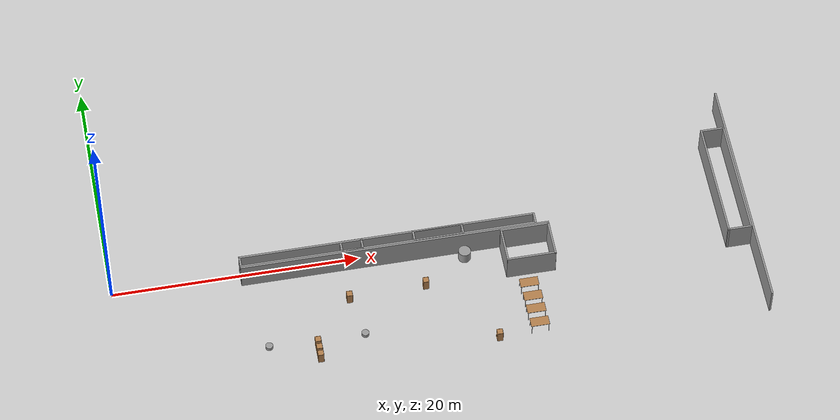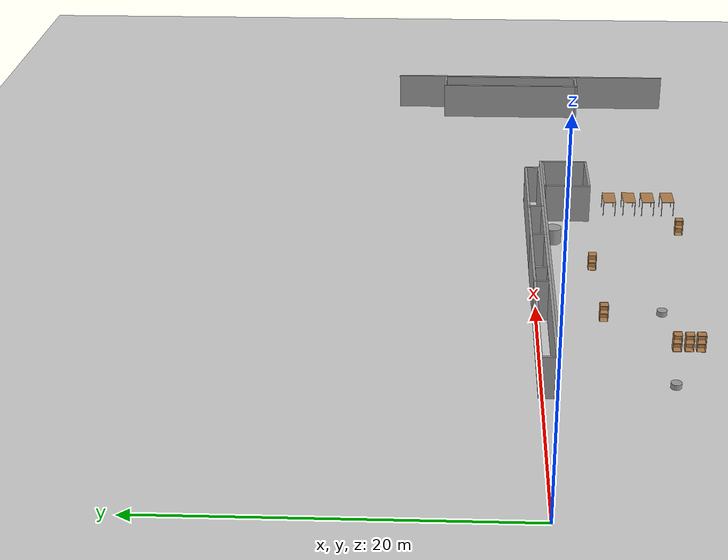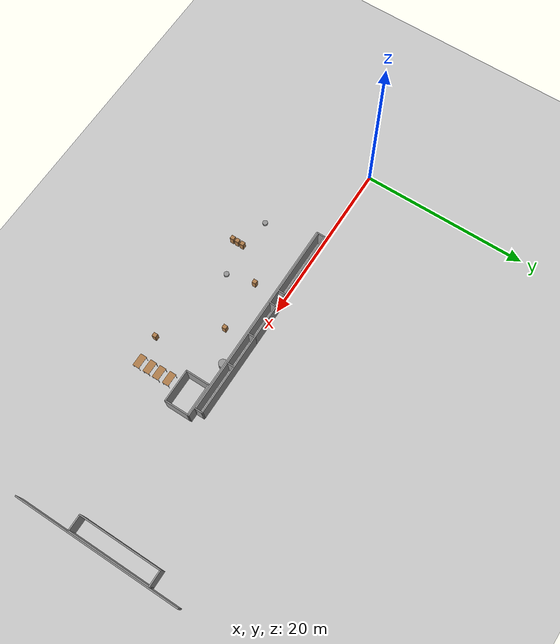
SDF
<sdf version="1.6">
 <world name="default">
  <model name="ground_plane">
   <static>1</static>
   <link name="link">
    <collision name="collision">
     <geometry><plane><normal>0 0 1</normal><size>105 105</size></plane></geometry>
     <surface>
      <contact><collide_bitmask>65535</collide_bitmask></contact>
      <friction><ode><mu>100</mu><mu2>50</mu2></ode></friction>
     </surface>
    </collision>
    <visual name="visual">
     <cast_shadows>0</cast_shadows>
     <geometry><plane><normal>0 0 1</normal><size>105 105</size></plane></geometry>
     <material>
      <script><uri>file://media/materials/scripts/gazebo.material</uri><name>Gazebo/Grey</name></script>
     </material>
    </visual>
   </link>
  </model>
  <model name="wall_v20m_4">
   <pose>51.4193 -0.729847 0 0 -0 0</pose>
   <link name="Wall_35">
    <collision name="Wall_35_Collision">
     <geometry><box><size>20 0.15 2.5</size></box></geometry>
     <pose>0 0 1.25 0 -0 0</pose>
    </collision>
    <visual name="Wall_35_Visual">
     <pose>0 0 1.25 0 -0 0</pose>
     <geometry><box><size>20 0.15 2.5</size></box></geometry>
     <material>
      <script><uri>file://media/materials/scripts/gazebo.material</uri><name>Gazebo/Grey</name></script>
      <ambient>1 1 1 1</ambient>
     </material>
     <meta><layer>0</layer></meta>
    </visual>
    <pose>0 -0 0 0 -0 -1.5708</pose>
   </link>
   <static>1</static>
  </model>
  <model name="base3x4_74">
   <pose>33.377 -2.40049 0 0 -0 0</pose>
   <link name="Wall_18">
    <collision name="Wall_18_Collision">
     <geometry><box><size>3 0.15 2.5</size></box></geometry>
     <pose>0 0 1.25 0 -0 0</pose>
    </collision>
    <visual name="Wall_18_Visual">
     <pose>0 0 1.25 0 -0 0</pose>
     <geometry><box><size>3 0.15 2.5</size></box></geometry>
     <material>
      <script><uri>file://media/materials/scripts/gazebo.material</uri><name>Gazebo/Grey</name></script>
      <ambient>1 1 1 1</ambient>
     </material>
     <meta><layer>0</layer></meta>
    </visual>
    <pose>-1.925 -0 0 0 -0 -1.5708</pose>
   </link>
   <link name="Wall_19">
    <collision name="Wall_19_Collision">
     <geometry><box><size>4 0.15 2.5</size></box></geometry>
     <pose>0 0 1.25 0 -0 0</pose>
    </collision>
    <visual name="Wall_19_Visual">
     <pose>0 0 1.25 0 -0 0</pose>
     <geometry><box><size>4 0.15 2.5</size></box></geometry>
     <material>
      <script><uri>file://media/materials/scripts/gazebo.material</uri><name>Gazebo/Grey</name></script>
      <ambient>1 1 1 1</ambient>
     </material>
     <meta><layer>0</layer></meta>
    </visual>
    <pose>-0 -1.425 0 0 -0 0</pose>
   </link>
   <link name="Wall_20">
    <collision name="Wall_20_Collision">
     <geometry><box><size>3 0.15 2.5</size></box></geometry>
     <pose>0 0 1.25 0 -0 0</pose>
    </collision>
    <visual name="Wall_20_Visual">
     <pose>0 0 1.25 0 -0 0</pose>
     <geometry><box><size>3 0.15 2.5</size></box></geometry>
     <material>
      <script><uri>file://media/materials/scripts/gazebo.material</uri><name>Gazebo/Grey</name></script>
      <ambient>1 1 1 1</ambient>
     </material>
     <meta><layer>0</layer></meta>
    </visual>
    <pose>1.925 -0 0 0 -0 1.5708</pose>
   </link>
   <link name="Wall_21">
    <collision name="Wall_21_Collision">
     <geometry><box><size>4 0.15 2.5</size></box></geometry>
     <pose>0 0 1.25 0 -0 0</pose>
    </collision>
    <visual name="Wall_21_Visual">
     <pose>0 0 1.25 0 -0 0</pose>
     <geometry><box><size>4 0.15 2.5</size></box></geometry>
     <material>
      <script><uri>file://media/materials/scripts/gazebo.material</uri><name>Gazebo/Grey</name></script>
      <ambient>1 1 1 1</ambient>
     </material>
     <meta><layer>0</layer></meta>
    </visual>
    <pose>-0 1.425 0 0 -0 3.14159</pose>
   </link>
   <static>1</static>
  </model>
  <model name="wall_25m">
   <pose>22.8554 -0.847994 0 0 -0 0</pose>
   <link name="Wall_28">
    <collision name="Wall_28_Collision">
     <geometry><box><size>25 0.15 2.5</size></box></geometry>
     <pose>0 0 1.25 0 -0 0</pose>
    </collision>
    <visual name="Wall_28_Visual">
     <pose>0 0 1.25 0 -0 0</pose>
     <geometry><box><size>25 0.15 2.5</size></box></geometry>
     <material>
      <script><uri>file://media/materials/scripts/gazebo.material</uri><name>Gazebo/Grey</name></script>
      <ambient>1 1 1 1</ambient>
     </material>
     <meta><layer>0</layer></meta>
    </visual>
   </link>
   <static>1</static>
  </model>
  <model name="base1x10">
   <pose>15.3419 -0.283387 0 0 -0 0</pose>
   <link name="Wall_0">
    <collision name="Wall_0_Collision">
     <geometry><box><size>1 0.15 2.5</size></box></geometry>
     <pose>0 0 1.25 0 -0 0</pose>
    </collision>
    <visual name="Wall_0_Visual">
     <pose>0 0 1.25 0 -0 0</pose>
     <geometry><box><size>1 0.15 2.5</size></box></geometry>
     <material>
      <script><uri>file://media/materials/scripts/gazebo.material</uri><name>Gazebo/Grey</name></script>
      <ambient>1 1 1 1</ambient>
     </material>
     <meta><layer>0</layer></meta>
    </visual>
    <pose>-4.925 -0 0 0 -0 -1.5708</pose>
   </link>
   <link name="Wall_1">
    <collision name="Wall_1_Collision">
     <geometry><box><size>10 0.15 2.5</size></box></geometry>
     <pose>0 0 1.25 0 -0 0</pose>
    </collision>
    <visual name="Wall_1_Visual">
     <pose>0 0 1.25 0 -0 0</pose>
     <geometry><box><size>10 0.15 2.5</size></box></geometry>
     <material>
      <script><uri>file://media/materials/scripts/gazebo.material</uri><name>Gazebo/Grey</name></script>
      <ambient>1 1 1 1</ambient>
     </material>
     <meta><layer>0</layer></meta>
    </visual>
    <pose>0 -0.425 0 0 -0 0</pose>
   </link>
   <link name="Wall_2">
    <collision name="Wall_2_Collision">
     <geometry><box><size>1 0.15 2.5</size></box></geometry>
     <pose>0 0 1.25 0 -0 0</pose>
    </collision>
    <visual name="Wall_2_Visual">
     <pose>0 0 1.25 0 -0 0</pose>
     <geometry><box><size>1 0.15 2.5</size></box></geometry>
     <material>
      <script><uri>file://media/materials/scripts/gazebo.material</uri><name>Gazebo/Grey</name></script>
      <ambient>1 1 1 1</ambient>
     </material>
     <meta><layer>0</layer></meta>
    </visual>
    <pose>4.925 -0 0 0 -0 1.5708</pose>
   </link>
   <link name="Wall_3">
    <collision name="Wall_3_Collision">
     <geometry><box><size>10 0.15 2.5</size></box></geometry>
     <pose>0 0 1.25 0 -0 0</pose>
    </collision>
    <visual name="Wall_3_Visual">
     <pose>0 0 1.25 0 -0 0</pose>
     <geometry><box><size>10 0.15 2.5</size></box></geometry>
     <material>
      <script><uri>file://media/materials/scripts/gazebo.material</uri><name>Gazebo/Grey</name></script>
      <ambient>1 1 1 1</ambient>
     </material>
     <meta><layer>0</layer></meta>
    </visual>
    <pose>0 0.425 0 0 -0 3.14159</pose>
   </link>
   <static>1</static>
  </model>
  <model name="base1x10_1">
   <pose>29.3973 -0.272641 0 0 -0 0</pose>
   <link name="Wall_0">
    <collision name="Wall_0_Collision">
     <geometry><box><size>1 0.15 2.5</size></box></geometry>
     <pose>0 0 1.25 0 -0 0</pose>
    </collision>
    <visual name="Wall_0_Visual">
     <pose>0 0 1.25 0 -0 0</pose>
     <geometry><box><size>1 0.15 2.5</size></box></geometry>
     <material>
      <script><uri>file://media/materials/scripts/gazebo.material</uri><name>Gazebo/Grey</name></script>
      <ambient>1 1 1 1</ambient>
     </material>
     <meta><layer>0</layer></meta>
    </visual>
    <pose>-4.925 -0 0 0 -0 -1.5708</pose>
   </link>
   <link name="Wall_1">
    <collision name="Wall_1_Collision">
     <geometry><box><size>10 0.15 2.5</size></box></geometry>
     <pose>0 0 1.25 0 -0 0</pose>
    </collision>
    <visual name="Wall_1_Visual">
     <pose>0 0 1.25 0 -0 0</pose>
     <geometry><box><size>10 0.15 2.5</size></box></geometry>
     <material>
      <script><uri>file://media/materials/scripts/gazebo.material</uri><name>Gazebo/Grey</name></script>
      <ambient>1 1 1 1</ambient>
     </material>
     <meta><layer>0</layer></meta>
    </visual>
    <pose>0 -0.425 0 0 -0 0</pose>
   </link>
   <link name="Wall_2">
    <collision name="Wall_2_Collision">
     <geometry><box><size>1 0.15 2.5</size></box></geometry>
     <pose>0 0 1.25 0 -0 0</pose>
    </collision>
    <visual name="Wall_2_Visual">
     <pose>0 0 1.25 0 -0 0</pose>
     <geometry><box><size>1 0.15 2.5</size></box></geometry>
     <material>
      <script><uri>file://media/materials/scripts/gazebo.material</uri><name>Gazebo/Grey</name></script>
      <ambient>1 1 1 1</ambient>
     </material>
     <meta><layer>0</layer></meta>
    </visual>
    <pose>4.925 -0 0 0 -0 1.5708</pose>
   </link>
   <link name="Wall_3">
    <collision name="Wall_3_Collision">
     <geometry><box><size>10 0.15 2.5</size></box></geometry>
     <pose>0 0 1.25 0 -0 0</pose>
    </collision>
    <visual name="Wall_3_Visual">
     <pose>0 0 1.25 0 -0 0</pose>
     <geometry><box><size>10 0.15 2.5</size></box></geometry>
     <material>
      <script><uri>file://media/materials/scripts/gazebo.material</uri><name>Gazebo/Grey</name></script>
      <ambient>1 1 1 1</ambient>
     </material>
     <meta><layer>0</layer></meta>
    </visual>
    <pose>0 0.425 0 0 -0 3.14159</pose>
   </link>
   <static>1</static>
  </model>
  <model name="base1x10_2">
   <pose>23.5009 -0.27327 0 0 -0 0</pose>
   <link name="Wall_0">
    <collision name="Wall_0_Collision">
     <geometry><box><size>1 0.15 2.5</size></box></geometry>
     <pose>0 0 1.25 0 -0 0</pose>
    </collision>
    <visual name="Wall_0_Visual">
     <pose>0 0 1.25 0 -0 0</pose>
     <geometry><box><size>1 0.15 2.5</size></box></geometry>
     <material>
      <script><uri>file://media/materials/scripts/gazebo.material</uri><name>Gazebo/Grey</name></script>
      <ambient>1 1 1 1</ambient>
     </material>
     <meta><layer>0</layer></meta>
    </visual>
    <pose>-4.925 -0 0 0 -0 -1.5708</pose>
   </link>
   <link name="Wall_1">
    <collision name="Wall_1_Collision">
     <geometry><box><size>10 0.15 2.5</size></box></geometry>
     <pose>0 0 1.25 0 -0 0</pose>
    </collision>
    <visual name="Wall_1_Visual">
     <pose>0 0 1.25 0 -0 0</pose>
     <geometry><box><size>10 0.15 2.5</size></box></geometry>
     <material>
      <script><uri>file://media/materials/scripts/gazebo.material</uri><name>Gazebo/Grey</name></script>
      <ambient>1 1 1 1</ambient>
     </material>
     <meta><layer>0</layer></meta>
    </visual>
    <pose>0 -0.425 0 0 -0 0</pose>
   </link>
   <link name="Wall_2">
    <collision name="Wall_2_Collision">
     <geometry><box><size>1 0.15 2.5</size></box></geometry>
     <pose>0 0 1.25 0 -0 0</pose>
    </collision>
    <visual name="Wall_2_Visual">
     <pose>0 0 1.25 0 -0 0</pose>
     <geometry><box><size>1 0.15 2.5</size></box></geometry>
     <material>
      <script><uri>file://media/materials/scripts/gazebo.material</uri><name>Gazebo/Grey</name></script>
      <ambient>1 1 1 1</ambient>
     </material>
     <meta><layer>0</layer></meta>
    </visual>
    <pose>4.925 -0 0 0 -0 1.5708</pose>
   </link>
   <link name="Wall_3">
    <collision name="Wall_3_Collision">
     <geometry><box><size>10 0.15 2.5</size></box></geometry>
     <pose>0 0 1.25 0 -0 0</pose>
    </collision>
    <visual name="Wall_3_Visual">
     <pose>0 0 1.25 0 -0 0</pose>
     <geometry><box><size>10 0.15 2.5</size></box></geometry>
     <material>
      <script><uri>file://media/materials/scripts/gazebo.material</uri><name>Gazebo/Grey</name></script>
      <ambient>1 1 1 1</ambient>
     </material>
     <meta><layer>0</layer></meta>
    </visual>
    <pose>0 0.425 0 0 -0 3.14159</pose>
   </link>
   <static>1</static>
  </model>
  <model name="table_8">
   <static>1</static>
   <link name="link">
    <collision name="surface">
     <pose>0 0 1 0 -0 0</pose>
     <geometry><box><size>1.5 0.8 0.03</size></box></geometry>
     <surface><friction><ode><mu>0.6</mu><mu2>0.6</mu2></ode></friction></surface>
    </collision>
    <visual name="visual1">
     <pose>0 0 1 0 -0 0</pose>
     <geometry><box><size>1.5 0.8 0.03</size></box></geometry>
     <material>
      <script><uri>file://media/materials/scripts/gazebo.material</uri><name>Gazebo/Wood</name></script>
     </material>
    </visual>
    <collision name="front_left_leg">
     <pose>0.68 0.38 0.5 0 -0 0</pose>
     <geometry><cylinder><radius>0.02</radius><length>1</length></cylinder></geometry>
    </collision>
    <visual name="front_left_leg">
     <pose>0.68 0.38 0.5 0 -0 0</pose>
     <geometry><cylinder><radius>0.02</radius><length>1</length></cylinder></geometry>
     <material>
      <script><uri>file://media/materials/scripts/gazebo.material</uri><name>Gazebo/Grey</name></script>
     </material>
    </visual>
    <collision name="front_right_leg">
     <pose>0.68 -0.38 0.5 0 -0 0</pose>
     <geometry><cylinder><radius>0.02</radius><length>1</length></cylinder></geometry>
    </collision>
    <visual name="front_right_leg">
     <pose>0.68 -0.38 0.5 0 -0 0</pose>
     <geometry><cylinder><radius>0.02</radius><length>1</length></cylinder></geometry>
     <material>
      <script><uri>file://media/materials/scripts/gazebo.material</uri><name>Gazebo/Grey</name></script>
     </material>
    </visual>
    <collision name="back_right_leg">
     <pose>-0.68 -0.38 0.5 0 -0 0</pose>
     <geometry><cylinder><radius>0.02</radius><length>1</length></cylinder></geometry>
    </collision>
    <visual name="back_right_leg">
     <pose>-0.68 -0.38 0.5 0 -0 0</pose>
     <geometry><cylinder><radius>0.02</radius><length>1</length></cylinder></geometry>
     <material>
      <script><uri>file://media/materials/scripts/gazebo.material</uri><name>Gazebo/Grey</name></script>
     </material>
    </visual>
    <collision name="back_left_leg">
     <pose>-0.68 0.38 0.5 0 -0 0</pose>
     <geometry><cylinder><radius>0.02</radius><length>1</length></cylinder></geometry>
    </collision>
    <visual name="back_left_leg">
     <pose>-0.68 0.38 0.5 0 -0 0</pose>
     <geometry><cylinder><radius>0.02</radius><length>1</length></cylinder></geometry>
     <material>
      <script><uri>file://media/materials/scripts/gazebo.material</uri><name>Gazebo/Grey</name></script>
     </material>
    </visual>
   </link>
   <pose>33.0125 -9.09753 0 0 -0 0</pose>
  </model>
  <model name="table_9">
   <static>1</static>
   <link name="link">
    <collision name="surface">
     <pose>0 0 1 0 -0 0</pose>
     <geometry><box><size>1.5 0.8 0.03</size></box></geometry>
     <surface><friction><ode><mu>0.6</mu><mu2>0.6</mu2></ode></friction></surface>
    </collision>
    <visual name="visual1">
     <pose>0 0 1 0 -0 0</pose>
     <geometry><box><size>1.5 0.8 0.03</size></box></geometry>
     <material>
      <script><uri>file://media/materials/scripts/gazebo.material</uri><name>Gazebo/Wood</name></script>
     </material>
    </visual>
    <collision name="front_left_leg">
     <pose>0.68 0.38 0.5 0 -0 0</pose>
     <geometry><cylinder><radius>0.02</radius><length>1</length></cylinder></geometry>
    </collision>
    <visual name="front_left_leg">
     <pose>0.68 0.38 0.5 0 -0 0</pose>
     <geometry><cylinder><radius>0.02</radius><length>1</length></cylinder></geometry>
     <material>
      <script><uri>file://media/materials/scripts/gazebo.material</uri><name>Gazebo/Grey</name></script>
     </material>
    </visual>
    <collision name="front_right_leg">
     <pose>0.68 -0.38 0.5 0 -0 0</pose>
     <geometry><cylinder><radius>0.02</radius><length>1</length></cylinder></geometry>
    </collision>
    <visual name="front_right_leg">
     <pose>0.68 -0.38 0.5 0 -0 0</pose>
     <geometry><cylinder><radius>0.02</radius><length>1</length></cylinder></geometry>
     <material>
      <script><uri>file://media/materials/scripts/gazebo.material</uri><name>Gazebo/Grey</name></script>
     </material>
    </visual>
    <collision name="back_right_leg">
     <pose>-0.68 -0.38 0.5 0 -0 0</pose>
     <geometry><cylinder><radius>0.02</radius><length>1</length></cylinder></geometry>
    </collision>
    <visual name="back_right_leg">
     <pose>-0.68 -0.38 0.5 0 -0 0</pose>
     <geometry><cylinder><radius>0.02</radius><length>1</length></cylinder></geometry>
     <material>
      <script><uri>file://media/materials/scripts/gazebo.material</uri><name>Gazebo/Grey</name></script>
     </material>
    </visual>
    <collision name="back_left_leg">
     <pose>-0.68 0.38 0.5 0 -0 0</pose>
     <geometry><cylinder><radius>0.02</radius><length>1</length></cylinder></geometry>
    </collision>
    <visual name="back_left_leg">
     <pose>-0.68 0.38 0.5 0 -0 0</pose>
     <geometry><cylinder><radius>0.02</radius><length>1</length></cylinder></geometry>
     <material>
      <script><uri>file://media/materials/scripts/gazebo.material</uri><name>Gazebo/Grey</name></script>
     </material>
    </visual>
   </link>
   <pose>32.9806 -7.80617 0 0 -0 0</pose>
  </model>
  <model name="table_10">
   <static>1</static>
   <link name="link">
    <collision name="surface">
     <pose>0 0 1 0 -0 0</pose>
     <geometry><box><size>1.5 0.8 0.03</size></box></geometry>
     <surface><friction><ode><mu>0.6</mu><mu2>0.6</mu2></ode></friction></surface>
    </collision>
    <visual name="visual1">
     <pose>0 0 1 0 -0 0</pose>
     <geometry><box><size>1.5 0.8 0.03</size></box></geometry>
     <material>
      <script><uri>file://media/materials/scripts/gazebo.material</uri><name>Gazebo/Wood</name></script>
     </material>
    </visual>
    <collision name="front_left_leg">
     <pose>0.68 0.38 0.5 0 -0 0</pose>
     <geometry><cylinder><radius>0.02</radius><length>1</length></cylinder></geometry>
    </collision>
    <visual name="front_left_leg">
     <pose>0.68 0.38 0.5 0 -0 0</pose>
     <geometry><cylinder><radius>0.02</radius><length>1</length></cylinder></geometry>
     <material>
      <script><uri>file://media/materials/scripts/gazebo.material</uri><name>Gazebo/Grey</name></script>
     </material>
    </visual>
    <collision name="front_right_leg">
     <pose>0.68 -0.38 0.5 0 -0 0</pose>
     <geometry><cylinder><radius>0.02</radius><length>1</length></cylinder></geometry>
    </collision>
    <visual name="front_right_leg">
     <pose>0.68 -0.38 0.5 0 -0 0</pose>
     <geometry><cylinder><radius>0.02</radius><length>1</length></cylinder></geometry>
     <material>
      <script><uri>file://media/materials/scripts/gazebo.material</uri><name>Gazebo/Grey</name></script>
     </material>
    </visual>
    <collision name="back_right_leg">
     <pose>-0.68 -0.38 0.5 0 -0 0</pose>
     <geometry><cylinder><radius>0.02</radius><length>1</length></cylinder></geometry>
    </collision>
    <visual name="back_right_leg">
     <pose>-0.68 -0.38 0.5 0 -0 0</pose>
     <geometry><cylinder><radius>0.02</radius><length>1</length></cylinder></geometry>
     <material>
      <script><uri>file://media/materials/scripts/gazebo.material</uri><name>Gazebo/Grey</name></script>
     </material>
    </visual>
    <collision name="back_left_leg">
     <pose>-0.68 0.38 0.5 0 -0 0</pose>
     <geometry><cylinder><radius>0.02</radius><length>1</length></cylinder></geometry>
    </collision>
    <visual name="back_left_leg">
     <pose>-0.68 0.38 0.5 0 -0 0</pose>
     <geometry><cylinder><radius>0.02</radius><length>1</length></cylinder></geometry>
     <material>
      <script><uri>file://media/materials/scripts/gazebo.material</uri><name>Gazebo/Grey</name></script>
     </material>
    </visual>
   </link>
   <pose>32.9655 -6.58438 0 0 -0 0</pose>
  </model>
  <model name="table_11">
   <static>1</static>
   <link name="link">
    <collision name="surface">
     <pose>0 0 1 0 -0 0</pose>
     <geometry><box><size>1.5 0.8 0.03</size></box></geometry>
     <surface><friction><ode><mu>0.6</mu><mu2>0.6</mu2></ode></friction></surface>
    </collision>
    <visual name="visual1">
     <pose>0 0 1 0 -0 0</pose>
     <geometry><box><size>1.5 0.8 0.03</size></box></geometry>
     <material>
      <script><uri>file://media/materials/scripts/gazebo.material</uri><name>Gazebo/Wood</name></script>
     </material>
    </visual>
    <collision name="front_left_leg">
     <pose>0.68 0.38 0.5 0 -0 0</pose>
     <geometry><cylinder><radius>0.02</radius><length>1</length></cylinder></geometry>
    </collision>
    <visual name="front_left_leg">
     <pose>0.68 0.38 0.5 0 -0 0</pose>
     <geometry><cylinder><radius>0.02</radius><length>1</length></cylinder></geometry>
     <material>
      <script><uri>file://media/materials/scripts/gazebo.material</uri><name>Gazebo/Grey</name></script>
     </material>
    </visual>
    <collision name="front_right_leg">
     <pose>0.68 -0.38 0.5 0 -0 0</pose>
     <geometry><cylinder><radius>0.02</radius><length>1</length></cylinder></geometry>
    </collision>
    <visual name="front_right_leg">
     <pose>0.68 -0.38 0.5 0 -0 0</pose>
     <geometry><cylinder><radius>0.02</radius><length>1</length></cylinder></geometry>
     <material>
      <script><uri>file://media/materials/scripts/gazebo.material</uri><name>Gazebo/Grey</name></script>
     </material>
    </visual>
    <collision name="back_right_leg">
     <pose>-0.68 -0.38 0.5 0 -0 0</pose>
     <geometry><cylinder><radius>0.02</radius><length>1</length></cylinder></geometry>
    </collision>
    <visual name="back_right_leg">
     <pose>-0.68 -0.38 0.5 0 -0 0</pose>
     <geometry><cylinder><radius>0.02</radius><length>1</length></cylinder></geometry>
     <material>
      <script><uri>file://media/materials/scripts/gazebo.material</uri><name>Gazebo/Grey</name></script>
     </material>
    </visual>
    <collision name="back_left_leg">
     <pose>-0.68 0.38 0.5 0 -0 0</pose>
     <geometry><cylinder><radius>0.02</radius><length>1</length></cylinder></geometry>
    </collision>
    <visual name="back_left_leg">
     <pose>-0.68 0.38 0.5 0 -0 0</pose>
     <geometry><cylinder><radius>0.02</radius><length>1</length></cylinder></geometry>
     <material>
      <script><uri>file://media/materials/scripts/gazebo.material</uri><name>Gazebo/Grey</name></script>
     </material>
    </visual>
   </link>
   <pose>32.9166 -5.29279 0 0 -0 0</pose>
  </model>
  <model name="cabinet_0">
   <static>1</static>
   <link name="cabinet_bottom_plate">
    <inertial>
     <pose>0 0 -1 0 -0 0</pose>
     <inertia><ixx>2.05</ixx><ixy>0</ixy><ixz>0</ixz><iyy>2.05</iyy><iyz>0</iyz><izz>2.05</izz></inertia>
     <mass>25</mass>
    </inertial>
    <collision name="cabinet_bottom_plate_geom">
     <pose>0 0 0.01 0 -0 0</pose>
     <geometry><box><size>0.45 0.45 0.02</size></box></geometry>
    </collision>
    <visual name="cabinet_bottom_plate_geom_visual">
     <pose>0 0 0.01 0 -0 0</pose>
     <geometry><box><size>0.45 0.45 0.02</size></box></geometry>
     <material>
      <script><uri>file://media/materials/scripts/gazebo.material</uri><name>Gazebo/Wood</name></script>
     </material>
    </visual>
    <collision name="cabinet_bottom_plate_geom_cabinet_back_plate">
     <pose>0.235 0 0.51 0 -0 0</pose>
     <geometry><box><size>0.02 0.45 1.02</size></box></geometry>
    </collision>
    <visual name="cabinet_bottom_plate_geom_cabinet_back_plate_visual">
     <pose>0.235 0 0.51 0 -0 0</pose>
     <geometry><box><size>0.02 0.45 1.02</size></box></geometry>
     <material>
      <script><uri>file://media/materials/scripts/gazebo.material</uri><name>Gazebo/Wood</name></script>
     </material>
    </visual>
    <collision name="cabinet_bottom_plate_geom_cabinet_left_plate">
     <pose>0 0.235 0.51 0 -0 0</pose>
     <geometry><box><size>0.45 0.02 1.02</size></box></geometry>
    </collision>
    <visual name="cabinet_bottom_plate_geom_cabinet_left_plate_visual">
     <pose>0 0.235 0.51 0 -0 0</pose>
     <geometry><box><size>0.45 0.02 1.02</size></box></geometry>
     <material>
      <script><uri>file://media/materials/scripts/gazebo.material</uri><name>Gazebo/Wood</name></script>
     </material>
    </visual>
    <collision name="cabinet_bottom_plate_geom_cabinet_middle_plate">
     <pose>0 0 0.51 0 -0 0</pose>
     <geometry><box><size>0.45 0.45 0.02</size></box></geometry>
    </collision>
    <visual name="cabinet_bottom_plate_geom_cabinet_middle_plate_visual">
     <pose>0 0 0.51 0 -0 0</pose>
     <geometry><box><size>0.45 0.45 0.02</size></box></geometry>
     <material>
      <script><uri>file://media/materials/scripts/gazebo.material</uri><name>Gazebo/Wood</name></script>
     </material>
    </visual>
    <collision name="cabinet_bottom_plate_geom_cabinet_right_plate">
     <pose>0 -0.235 0.51 0 -0 0</pose>
     <geometry><box><size>0.45 0.02 1.02</size></box></geometry>
    </collision>
    <visual name="cabinet_bottom_plate_geom_cabinet_right_plate_visual">
     <pose>0 -0.235 0.51 0 -0 0</pose>
     <geometry><box><size>0.45 0.02 1.02</size></box></geometry>
     <material>
      <script><uri>file://media/materials/scripts/gazebo.material</uri><name>Gazebo/Wood</name></script>
     </material>
    </visual>
    <collision name="cabinet_bottom_plate_geom_cabinet_top_plate">
     <pose>0 0 1.01 0 -0 0</pose>
     <geometry><box><size>0.45 0.45 0.02</size></box></geometry>
    </collision>
    <visual name="cabinet_bottom_plate_geom_cabinet_top_plate_visual">
     <pose>0 0 1.01 0 -0 0</pose>
     <geometry><box><size>0.45 0.45 0.02</size></box></geometry>
     <material>
      <script><uri>file://media/materials/scripts/gazebo.material</uri><name>Gazebo/Wood</name></script>
     </material>
    </visual>
   </link>
   <pose>15.458 -7.61184 0 0 -0 0</pose>
  </model>
  <model name="cabinet_3">
   <static>1</static>
   <link name="cabinet_bottom_plate">
    <inertial>
     <pose>0 0 -1 0 -0 0</pose>
     <inertia><ixx>2.05</ixx><ixy>0</ixy><ixz>0</ixz><iyy>2.05</iyy><iyz>0</iyz><izz>2.05</izz></inertia>
     <mass>25</mass>
    </inertial>
    <collision name="cabinet_bottom_plate_geom">
     <pose>0 0 0.01 0 -0 0</pose>
     <geometry><box><size>0.45 0.45 0.02</size></box></geometry>
    </collision>
    <visual name="cabinet_bottom_plate_geom_visual">
     <pose>0 0 0.01 0 -0 0</pose>
     <geometry><box><size>0.45 0.45 0.02</size></box></geometry>
     <material>
      <script><uri>file://media/materials/scripts/gazebo.material</uri><name>Gazebo/Wood</name></script>
     </material>
    </visual>
    <collision name="cabinet_bottom_plate_geom_cabinet_back_plate">
     <pose>0.235 0 0.51 0 -0 0</pose>
     <geometry><box><size>0.02 0.45 1.02</size></box></geometry>
    </collision>
    <visual name="cabinet_bottom_plate_geom_cabinet_back_plate_visual">
     <pose>0.235 0 0.51 0 -0 0</pose>
     <geometry><box><size>0.02 0.45 1.02</size></box></geometry>
     <material>
      <script><uri>file://media/materials/scripts/gazebo.material</uri><name>Gazebo/Wood</name></script>
     </material>
    </visual>
    <collision name="cabinet_bottom_plate_geom_cabinet_left_plate">
     <pose>0 0.235 0.51 0 -0 0</pose>
     <geometry><box><size>0.45 0.02 1.02</size></box></geometry>
    </collision>
    <visual name="cabinet_bottom_plate_geom_cabinet_left_plate_visual">
     <pose>0 0.235 0.51 0 -0 0</pose>
     <geometry><box><size>0.45 0.02 1.02</size></box></geometry>
     <material>
      <script><uri>file://media/materials/scripts/gazebo.material</uri><name>Gazebo/Wood</name></script>
     </material>
    </visual>
    <collision name="cabinet_bottom_plate_geom_cabinet_middle_plate">
     <pose>0 0 0.51 0 -0 0</pose>
     <geometry><box><size>0.45 0.45 0.02</size></box></geometry>
    </collision>
    <visual name="cabinet_bottom_plate_geom_cabinet_middle_plate_visual">
     <pose>0 0 0.51 0 -0 0</pose>
     <geometry><box><size>0.45 0.45 0.02</size></box></geometry>
     <material>
      <script><uri>file://media/materials/scripts/gazebo.material</uri><name>Gazebo/Wood</name></script>
     </material>
    </visual>
    <collision name="cabinet_bottom_plate_geom_cabinet_right_plate">
     <pose>0 -0.235 0.51 0 -0 0</pose>
     <geometry><box><size>0.45 0.02 1.02</size></box></geometry>
    </collision>
    <visual name="cabinet_bottom_plate_geom_cabinet_right_plate_visual">
     <pose>0 -0.235 0.51 0 -0 0</pose>
     <geometry><box><size>0.45 0.02 1.02</size></box></geometry>
     <material>
      <script><uri>file://media/materials/scripts/gazebo.material</uri><name>Gazebo/Wood</name></script>
     </material>
    </visual>
    <collision name="cabinet_bottom_plate_geom_cabinet_top_plate">
     <pose>0 0 1.01 0 -0 0</pose>
     <geometry><box><size>0.45 0.45 0.02</size></box></geometry>
    </collision>
    <visual name="cabinet_bottom_plate_geom_cabinet_top_plate_visual">
     <pose>0 0 1.01 0 -0 0</pose>
     <geometry><box><size>0.45 0.45 0.02</size></box></geometry>
     <material>
      <script><uri>file://media/materials/scripts/gazebo.material</uri><name>Gazebo/Wood</name></script>
     </material>
    </visual>
   </link>
   <pose>24.8345 -3.62664 0 0 -0 0</pose>
  </model>
  <model name="base10x2">
   <pose>50.3526 0.79739 0 0 -0 0</pose>
   <link name="Wall_20">
    <collision name="Wall_20_Collision">
     <geometry><box><size>2 0.15 2.5</size></box></geometry>
     <pose>0 0 1.25 0 -0 0</pose>
    </collision>
    <visual name="Wall_20_Visual">
     <pose>0 0 1.25 0 -0 0</pose>
     <geometry><box><size>2 0.15 2.5</size></box></geometry>
     <material>
      <script><uri>file://media/materials/scripts/gazebo.material</uri><name>Gazebo/Grey</name></script>
      <ambient>1 1 1 1</ambient>
     </material>
     <meta><layer>0</layer></meta>
    </visual>
    <pose>0 4.925 0 0 -0 0</pose>
   </link>
   <link name="Wall_21">
    <collision name="Wall_21_Collision">
     <geometry><box><size>10 0.15 2.5</size></box></geometry>
     <pose>0 0 1.25 0 -0 0</pose>
    </collision>
    <visual name="Wall_21_Visual">
     <pose>0 0 1.25 0 -0 0</pose>
     <geometry><box><size>10 0.15 2.5</size></box></geometry>
     <material>
      <script><uri>file://media/materials/scripts/gazebo.material</uri><name>Gazebo/Grey</name></script>
      <ambient>1 1 1 1</ambient>
     </material>
     <meta><layer>0</layer></meta>
    </visual>
    <pose>0.925 -0 0 0 -0 -1.5708</pose>
   </link>
   <link name="Wall_22">
    <collision name="Wall_22_Collision">
     <geometry><box><size>2 0.15 2.5</size></box></geometry>
     <pose>0 0 1.25 0 -0 0</pose>
    </collision>
    <visual name="Wall_22_Visual">
     <pose>0 0 1.25 0 -0 0</pose>
     <geometry><box><size>2 0.15 2.5</size></box></geometry>
     <material>
      <script><uri>file://media/materials/scripts/gazebo.material</uri><name>Gazebo/Grey</name></script>
      <ambient>1 1 1 1</ambient>
     </material>
     <meta><layer>0</layer></meta>
    </visual>
    <pose>0 -4.925 0 0 -0 3.14159</pose>
   </link>
   <link name="Wall_23">
    <collision name="Wall_23_Collision">
     <geometry><box><size>10 0.15 2.5</size></box></geometry>
     <pose>0 0 1.25 0 -0 0</pose>
    </collision>
    <visual name="Wall_23_Visual">
     <pose>0 0 1.25 0 -0 0</pose>
     <geometry><box><size>10 0.15 2.5</size></box></geometry>
     <material>
      <script><uri>file://media/materials/scripts/gazebo.material</uri><name>Gazebo/Grey</name></script>
      <ambient>1 1 1 1</ambient>
     </material>
     <meta><layer>0</layer></meta>
    </visual>
    <pose>-0.925 -0 0 0 -0 1.5708</pose>
   </link>
   <static>1</static>
  </model>
  <model name="cabinet_2_clone">
   <static>1</static>
   <link name="cabinet_bottom_plate">
    <inertial>
     <pose>0 0 -1 0 -0 0</pose>
     <inertia><ixx>2.05</ixx><ixy>0</ixy><ixz>0</ixz><iyy>2.05</iyy><iyz>0</iyz><izz>2.05</izz></inertia>
     <mass>25</mass>
    </inertial>
    <collision name="cabinet_bottom_plate_geom">
     <pose>0 0 0.01 0 -0 0</pose>
     <geometry><box><size>0.45 0.45 0.02</size></box></geometry>
    </collision>
    <visual name="cabinet_bottom_plate_geom_visual">
     <pose>0 0 0.01 0 -0 0</pose>
     <geometry><box><size>0.45 0.45 0.02</size></box></geometry>
     <material>
      <script><uri>file://media/materials/scripts/gazebo.material</uri><name>Gazebo/Wood</name></script>
     </material>
    </visual>
    <collision name="cabinet_bottom_plate_geom_cabinet_back_plate">
     <pose>0.235 0 0.51 0 -0 0</pose>
     <geometry><box><size>0.02 0.45 1.02</size></box></geometry>
    </collision>
    <visual name="cabinet_bottom_plate_geom_cabinet_back_plate_visual">
     <pose>0.235 0 0.51 0 -0 0</pose>
     <geometry><box><size>0.02 0.45 1.02</size></box></geometry>
     <material>
      <script><uri>file://media/materials/scripts/gazebo.material</uri><name>Gazebo/Wood</name></script>
     </material>
    </visual>
    <collision name="cabinet_bottom_plate_geom_cabinet_left_plate">
     <pose>0 0.235 0.51 0 -0 0</pose>
     <geometry><box><size>0.45 0.02 1.02</size></box></geometry>
    </collision>
    <visual name="cabinet_bottom_plate_geom_cabinet_left_plate_visual">
     <pose>0 0.235 0.51 0 -0 0</pose>
     <geometry><box><size>0.45 0.02 1.02</size></box></geometry>
     <material>
      <script><uri>file://media/materials/scripts/gazebo.material</uri><name>Gazebo/Wood</name></script>
     </material>
    </visual>
    <collision name="cabinet_bottom_plate_geom_cabinet_middle_plate">
     <pose>0 0 0.51 0 -0 0</pose>
     <geometry><box><size>0.45 0.45 0.02</size></box></geometry>
    </collision>
    <visual name="cabinet_bottom_plate_geom_cabinet_middle_plate_visual">
     <pose>0 0 0.51 0 -0 0</pose>
     <geometry><box><size>0.45 0.45 0.02</size></box></geometry>
     <material>
      <script><uri>file://media/materials/scripts/gazebo.material</uri><name>Gazebo/Wood</name></script>
     </material>
    </visual>
    <collision name="cabinet_bottom_plate_geom_cabinet_right_plate">
     <pose>0 -0.235 0.51 0 -0 0</pose>
     <geometry><box><size>0.45 0.02 1.02</size></box></geometry>
    </collision>
    <visual name="cabinet_bottom_plate_geom_cabinet_right_plate_visual">
     <pose>0 -0.235 0.51 0 -0 0</pose>
     <geometry><box><size>0.45 0.02 1.02</size></box></geometry>
     <material>
      <script><uri>file://media/materials/scripts/gazebo.material</uri><name>Gazebo/Wood</name></script>
     </material>
    </visual>
    <collision name="cabinet_bottom_plate_geom_cabinet_top_plate">
     <pose>0 0 1.01 0 -0 0</pose>
     <geometry><box><size>0.45 0.45 0.02</size></box></geometry>
    </collision>
    <visual name="cabinet_bottom_plate_geom_cabinet_top_plate_visual">
     <pose>0 0 1.01 0 -0 0</pose>
     <geometry><box><size>0.45 0.45 0.02</size></box></geometry>
     <material>
      <script><uri>file://media/materials/scripts/gazebo.material</uri><name>Gazebo/Wood</name></script>
     </material>
    </visual>
   </link>
   <pose>18.6118 -3.83677 0 0 -0 0</pose>
  </model>
  <model name="unit_cylinder30x30cm_2_clone_2">
   <link name="link">
    <inertial>
     <mass>1</mass>
     <inertia><ixx>0.145833</ixx><ixy>0</ixy><ixz>0</ixz><iyy>0.145833</iyy><iyz>0</iyz><izz>0.125</izz></inertia>
    </inertial>
    <visual name="visual">
     <geometry><cylinder><radius>0.3</radius><length>0.3</length></cylinder></geometry>
     <material>
      <script><name>Gazebo/Grey</name><uri>file://media/materials/scripts/gazebo.material</uri></script>
      <shader type="vertex"><normal_map>__default__</normal_map></shader>
      <ambient>0.3 0.3 0.3 1</ambient>
      <diffuse>0.7 0.7 0.7 1</diffuse>
      <specular>0.01 0.01 0.01 1</specular>
      <emissive>0 0 0 1</emissive>
     </material>
    </visual>
    <collision name="collision">
     <geometry><cylinder><radius>0.3</radius><length>0.3</length></cylinder></geometry>
     <surface>
      <friction>
       <ode><mu>1</mu><mu2>1</mu2><fdir1>0 0 0</fdir1><slip1>0</slip1><slip2>0</slip2></ode>
       <torsional>
        <coefficient>1</coefficient>
        <patch_radius>0</patch_radius>
        <surface_radius>0</surface_radius>
        <use_patch_radius>1</use_patch_radius>
        <ode><slip>0</slip></ode>
       </torsional>
      </friction>
      <bounce><restitution_coefficient>0</restitution_coefficient><threshold>1e+06</threshold></bounce>
      <contact>
       <collide_without_contact>0</collide_without_contact>
       <collide_without_contact_bitmask>1</collide_without_contact_bitmask>
       <collide_bitmask>1</collide_bitmask>
       <ode>
        <soft_cfm>0</soft_cfm>
        <soft_erp>0.2</soft_erp>
        <kp>1e+13</kp>
        <kd>1</kd>
        <max_vel>0.01</max_vel>
        <min_depth>0</min_depth>
       </ode>
       <bullet>
        <split_impulse>1</split_impulse>
        <split_impulse_penetration_threshold>-0.01</split_impulse_penetration_threshold>
        <soft_cfm>0</soft_cfm>
        <soft_erp>0.2</soft_erp>
        <kp>1e+13</kp>
        <kd>1</kd>
       </bullet>
      </contact>
     </surface>
    </collision>
   </link>
   <static>0</static>
   <pose>19.3109 -7.2377 0.149805 -0 -0 -0</pose>
  </model>
  <model name="unit_cylinder30x30cm_2_clone_3">
   <link name="link">
    <inertial>
     <mass>1</mass>
     <inertia><ixx>0.145833</ixx><ixy>0</ixy><ixz>0</ixz><iyy>0.145833</iyy><iyz>0</iyz><izz>0.125</izz></inertia>
    </inertial>
    <visual name="visual">
     <geometry><cylinder><radius>0.3</radius><length>0.3</length></cylinder></geometry>
     <material>
      <script><name>Gazebo/Grey</name><uri>file://media/materials/scripts/gazebo.material</uri></script>
      <shader type="vertex"><normal_map>__default__</normal_map></shader>
      <ambient>0.3 0.3 0.3 1</ambient>
      <diffuse>0.7 0.7 0.7 1</diffuse>
      <specular>0.01 0.01 0.01 1</specular>
      <emissive>0 0 0 1</emissive>
     </material>
    </visual>
    <collision name="collision">
     <geometry><cylinder><radius>0.3</radius><length>0.3</length></cylinder></geometry>
     <surface>
      <friction>
       <ode><mu>1</mu><mu2>1</mu2><fdir1>0 0 0</fdir1><slip1>0</slip1><slip2>0</slip2></ode>
       <torsional>
        <coefficient>1</coefficient>
        <patch_radius>0</patch_radius>
        <surface_radius>0</surface_radius>
        <use_patch_radius>1</use_patch_radius>
        <ode><slip>0</slip></ode>
       </torsional>
      </friction>
      <bounce><restitution_coefficient>0</restitution_coefficient><threshold>1e+06</threshold></bounce>
      <contact>
       <collide_without_contact>0</collide_without_contact>
       <collide_without_contact_bitmask>1</collide_without_contact_bitmask>
       <collide_bitmask>1</collide_bitmask>
       <ode>
        <soft_cfm>0</soft_cfm>
        <soft_erp>0.2</soft_erp>
        <kp>1e+13</kp>
        <kd>1</kd>
        <max_vel>0.01</max_vel>
        <min_depth>0</min_depth>
       </ode>
       <bullet>
        <split_impulse>1</split_impulse>
        <split_impulse_penetration_threshold>-0.01</split_impulse_penetration_threshold>
        <soft_cfm>0</soft_cfm>
        <soft_erp>0.2</soft_erp>
        <kp>1e+13</kp>
        <kd>1</kd>
       </bullet>
      </contact>
     </surface>
    </collision>
   </link>
   <static>0</static>
   <pose>11.6182 -7.09854 0.149805 -0 -0 -0</pose>
  </model>
  <model name="cabinet_4_clone_clone_2">
   <static>1</static>
   <link name="cabinet_bottom_plate">
    <inertial>
     <pose>0 0 -1 0 -0 0</pose>
     <inertia><ixx>2.05</ixx><ixy>0</ixy><ixz>0</ixz><iyy>2.05</iyy><iyz>0</iyz><izz>2.05</izz></inertia>
     <mass>25</mass>
    </inertial>
    <collision name="cabinet_bottom_plate_geom">
     <pose>0 0 0.01 0 -0 0</pose>
     <geometry><box><size>0.45 0.45 0.02</size></box></geometry>
    </collision>
    <visual name="cabinet_bottom_plate_geom_visual">
     <pose>0 0 0.01 0 -0 0</pose>
     <geometry><box><size>0.45 0.45 0.02</size></box></geometry>
     <material>
      <script><uri>file://media/materials/scripts/gazebo.material</uri><name>Gazebo/Wood</name></script>
     </material>
    </visual>
    <collision name="cabinet_bottom_plate_geom_cabinet_back_plate">
     <pose>0.235 0 0.51 0 -0 0</pose>
     <geometry><box><size>0.02 0.45 1.02</size></box></geometry>
    </collision>
    <visual name="cabinet_bottom_plate_geom_cabinet_back_plate_visual">
     <pose>0.235 0 0.51 0 -0 0</pose>
     <geometry><box><size>0.02 0.45 1.02</size></box></geometry>
     <material>
      <script><uri>file://media/materials/scripts/gazebo.material</uri><name>Gazebo/Wood</name></script>
     </material>
    </visual>
    <collision name="cabinet_bottom_plate_geom_cabinet_left_plate">
     <pose>0 0.235 0.51 0 -0 0</pose>
     <geometry><box><size>0.45 0.02 1.02</size></box></geometry>
    </collision>
    <visual name="cabinet_bottom_plate_geom_cabinet_left_plate_visual">
     <pose>0 0.235 0.51 0 -0 0</pose>
     <geometry><box><size>0.45 0.02 1.02</size></box></geometry>
     <material>
      <script><uri>file://media/materials/scripts/gazebo.material</uri><name>Gazebo/Wood</name></script>
     </material>
    </visual>
    <collision name="cabinet_bottom_plate_geom_cabinet_middle_plate">
     <pose>0 0 0.51 0 -0 0</pose>
     <geometry><box><size>0.45 0.45 0.02</size></box></geometry>
    </collision>
    <visual name="cabinet_bottom_plate_geom_cabinet_middle_plate_visual">
     <pose>0 0 0.51 0 -0 0</pose>
     <geometry><box><size>0.45 0.45 0.02</size></box></geometry>
     <material>
      <script><uri>file://media/materials/scripts/gazebo.material</uri><name>Gazebo/Wood</name></script>
     </material>
    </visual>
    <collision name="cabinet_bottom_plate_geom_cabinet_right_plate">
     <pose>0 -0.235 0.51 0 -0 0</pose>
     <geometry><box><size>0.45 0.02 1.02</size></box></geometry>
    </collision>
    <visual name="cabinet_bottom_plate_geom_cabinet_right_plate_visual">
     <pose>0 -0.235 0.51 0 -0 0</pose>
     <geometry><box><size>0.45 0.02 1.02</size></box></geometry>
     <material>
      <script><uri>file://media/materials/scripts/gazebo.material</uri><name>Gazebo/Wood</name></script>
     </material>
    </visual>
    <collision name="cabinet_bottom_plate_geom_cabinet_top_plate">
     <pose>0 0 1.01 0 -0 0</pose>
     <geometry><box><size>0.45 0.45 0.02</size></box></geometry>
    </collision>
    <visual name="cabinet_bottom_plate_geom_cabinet_top_plate_visual">
     <pose>0 0 1.01 0 -0 0</pose>
     <geometry><box><size>0.45 0.45 0.02</size></box></geometry>
     <material>
      <script><uri>file://media/materials/scripts/gazebo.material</uri><name>Gazebo/Wood</name></script>
     </material>
    </visual>
   </link>
   <pose>29.7244 -9.48543 0 0 -0 0</pose>
  </model>
  <model name="unit_cylinder_2_clone_4">
   <pose>28.4065 -1.43189 0.499805 -0 -0 -0</pose>
   <link name="link">
    <inertial>
     <mass>1</mass>
     <inertia><ixx>0.145833</ixx><ixy>0</ixy><ixz>0</ixz><iyy>0.145833</iyy><iyz>0</iyz><izz>0.125</izz></inertia>
    </inertial>
    <collision name="collision">
     <geometry><cylinder><radius>0.5</radius><length>1</length></cylinder></geometry>
    </collision>
    <visual name="visual">
     <geometry><cylinder><radius>0.5</radius><length>1</length></cylinder></geometry>
     <material>
      <script><name>Gazebo/Grey</name><uri>file://media/materials/scripts/gazebo.material</uri></script>
     </material>
    </visual>
   </link>
  </model>
  <model name="cabinet_clone">
   <static>1</static>
   <link name="cabinet_bottom_plate">
    <inertial>
     <pose>0 0 -1 0 -0 0</pose>
     <inertia><ixx>2.05</ixx><ixy>0</ixy><ixz>0</ixz><iyy>2.05</iyy><iyz>0</iyz><izz>2.05</izz></inertia>
     <mass>25</mass>
    </inertial>
    <collision name="cabinet_bottom_plate_geom">
     <pose>0 0 0.01 0 -0 0</pose>
     <geometry><box><size>0.45 0.45 0.02</size></box></geometry>
    </collision>
    <visual name="cabinet_bottom_plate_geom_visual">
     <pose>0 0 0.01 0 -0 0</pose>
     <geometry><box><size>0.45 0.45 0.02</size></box></geometry>
     <material>
      <script><uri>file://media/materials/scripts/gazebo.material</uri><name>Gazebo/Wood</name></script>
     </material>
    </visual>
    <collision name="cabinet_bottom_plate_geom_cabinet_back_plate">
     <pose>0.235 0 0.51 0 -0 0</pose>
     <geometry><box><size>0.02 0.45 1.02</size></box></geometry>
    </collision>
    <visual name="cabinet_bottom_plate_geom_cabinet_back_plate_visual">
     <pose>0.235 0 0.51 0 -0 0</pose>
     <geometry><box><size>0.02 0.45 1.02</size></box></geometry>
     <material>
      <script><uri>file://media/materials/scripts/gazebo.material</uri><name>Gazebo/Wood</name></script>
     </material>
    </visual>
    <collision name="cabinet_bottom_plate_geom_cabinet_left_plate">
     <pose>0 0.235 0.51 0 -0 0</pose>
     <geometry><box><size>0.45 0.02 1.02</size></box></geometry>
    </collision>
    <visual name="cabinet_bottom_plate_geom_cabinet_left_plate_visual">
     <pose>0 0.235 0.51 0 -0 0</pose>
     <geometry><box><size>0.45 0.02 1.02</size></box></geometry>
     <material>
      <script><uri>file://media/materials/scripts/gazebo.material</uri><name>Gazebo/Wood</name></script>
     </material>
    </visual>
    <collision name="cabinet_bottom_plate_geom_cabinet_middle_plate">
     <pose>0 0 0.51 0 -0 0</pose>
     <geometry><box><size>0.45 0.45 0.02</size></box></geometry>
    </collision>
    <visual name="cabinet_bottom_plate_geom_cabinet_middle_plate_visual">
     <pose>0 0 0.51 0 -0 0</pose>
     <geometry><box><size>0.45 0.45 0.02</size></box></geometry>
     <material>
      <script><uri>file://media/materials/scripts/gazebo.material</uri><name>Gazebo/Wood</name></script>
     </material>
    </visual>
    <collision name="cabinet_bottom_plate_geom_cabinet_right_plate">
     <pose>0 -0.235 0.51 0 -0 0</pose>
     <geometry><box><size>0.45 0.02 1.02</size></box></geometry>
    </collision>
    <visual name="cabinet_bottom_plate_geom_cabinet_right_plate_visual">
     <pose>0 -0.235 0.51 0 -0 0</pose>
     <geometry><box><size>0.45 0.02 1.02</size></box></geometry>
     <material>
      <script><uri>file://media/materials/scripts/gazebo.material</uri><name>Gazebo/Wood</name></script>
     </material>
    </visual>
    <collision name="cabinet_bottom_plate_geom_cabinet_top_plate">
     <pose>0 0 1.01 0 -0 0</pose>
     <geometry><box><size>0.45 0.45 0.02</size></box></geometry>
    </collision>
    <visual name="cabinet_bottom_plate_geom_cabinet_top_plate_visual">
     <pose>0 0 1.01 0 -0 0</pose>
     <geometry><box><size>0.45 0.45 0.02</size></box></geometry>
     <material>
      <script><uri>file://media/materials/scripts/gazebo.material</uri><name>Gazebo/Wood</name></script>
     </material>
    </visual>
   </link>
   <pose>15.4575 -8.28093 0 0 -0 0</pose>
  </model>
  <model name="cabinet_clone_0">
   <static>1</static>
   <link name="cabinet_bottom_plate">
    <inertial>
     <pose>0 0 -1 0 -0 0</pose>
     <inertia><ixx>2.05</ixx><ixy>0</ixy><ixz>0</ixz><iyy>2.05</iyy><iyz>0</iyz><izz>2.05</izz></inertia>
     <mass>25</mass>
    </inertial>
    <collision name="cabinet_bottom_plate_geom">
     <pose>0 0 0.01 0 -0 0</pose>
     <geometry><box><size>0.45 0.45 0.02</size></box></geometry>
    </collision>
    <visual name="cabinet_bottom_plate_geom_visual">
     <pose>0 0 0.01 0 -0 0</pose>
     <geometry><box><size>0.45 0.45 0.02</size></box></geometry>
     <material>
      <script><uri>file://media/materials/scripts/gazebo.material</uri><name>Gazebo/Wood</name></script>
     </material>
    </visual>
    <collision name="cabinet_bottom_plate_geom_cabinet_back_plate">
     <pose>0.235 0 0.51 0 -0 0</pose>
     <geometry><box><size>0.02 0.45 1.02</size></box></geometry>
    </collision>
    <visual name="cabinet_bottom_plate_geom_cabinet_back_plate_visual">
     <pose>0.235 0 0.51 0 -0 0</pose>
     <geometry><box><size>0.02 0.45 1.02</size></box></geometry>
     <material>
      <script><uri>file://media/materials/scripts/gazebo.material</uri><name>Gazebo/Wood</name></script>
     </material>
    </visual>
    <collision name="cabinet_bottom_plate_geom_cabinet_left_plate">
     <pose>0 0.235 0.51 0 -0 0</pose>
     <geometry><box><size>0.45 0.02 1.02</size></box></geometry>
    </collision>
    <visual name="cabinet_bottom_plate_geom_cabinet_left_plate_visual">
     <pose>0 0.235 0.51 0 -0 0</pose>
     <geometry><box><size>0.45 0.02 1.02</size></box></geometry>
     <material>
      <script><uri>file://media/materials/scripts/gazebo.material</uri><name>Gazebo/Wood</name></script>
     </material>
    </visual>
    <collision name="cabinet_bottom_plate_geom_cabinet_middle_plate">
     <pose>0 0 0.51 0 -0 0</pose>
     <geometry><box><size>0.45 0.45 0.02</size></box></geometry>
    </collision>
    <visual name="cabinet_bottom_plate_geom_cabinet_middle_plate_visual">
     <pose>0 0 0.51 0 -0 0</pose>
     <geometry><box><size>0.45 0.45 0.02</size></box></geometry>
     <material>
      <script><uri>file://media/materials/scripts/gazebo.material</uri><name>Gazebo/Wood</name></script>
     </material>
    </visual>
    <collision name="cabinet_bottom_plate_geom_cabinet_right_plate">
     <pose>0 -0.235 0.51 0 -0 0</pose>
     <geometry><box><size>0.45 0.02 1.02</size></box></geometry>
    </collision>
    <visual name="cabinet_bottom_plate_geom_cabinet_right_plate_visual">
     <pose>0 -0.235 0.51 0 -0 0</pose>
     <geometry><box><size>0.45 0.02 1.02</size></box></geometry>
     <material>
      <script><uri>file://media/materials/scripts/gazebo.material</uri><name>Gazebo/Wood</name></script>
     </material>
    </visual>
    <collision name="cabinet_bottom_plate_geom_cabinet_top_plate">
     <pose>0 0 1.01 0 -0 0</pose>
     <geometry><box><size>0.45 0.45 0.02</size></box></geometry>
    </collision>
    <visual name="cabinet_bottom_plate_geom_cabinet_top_plate_visual">
     <pose>0 0 1.01 0 -0 0</pose>
     <geometry><box><size>0.45 0.45 0.02</size></box></geometry>
     <material>
      <script><uri>file://media/materials/scripts/gazebo.material</uri><name>Gazebo/Wood</name></script>
     </material>
    </visual>
   </link>
   <pose>15.4528 -8.922 0 0 -0 0</pose>
  </model>
 </world>
</sdf>
